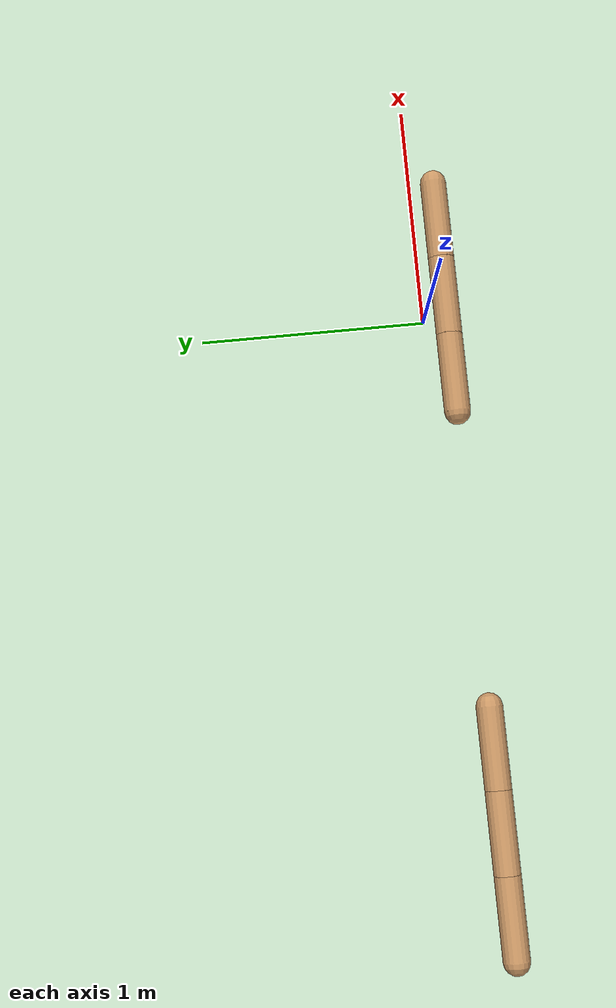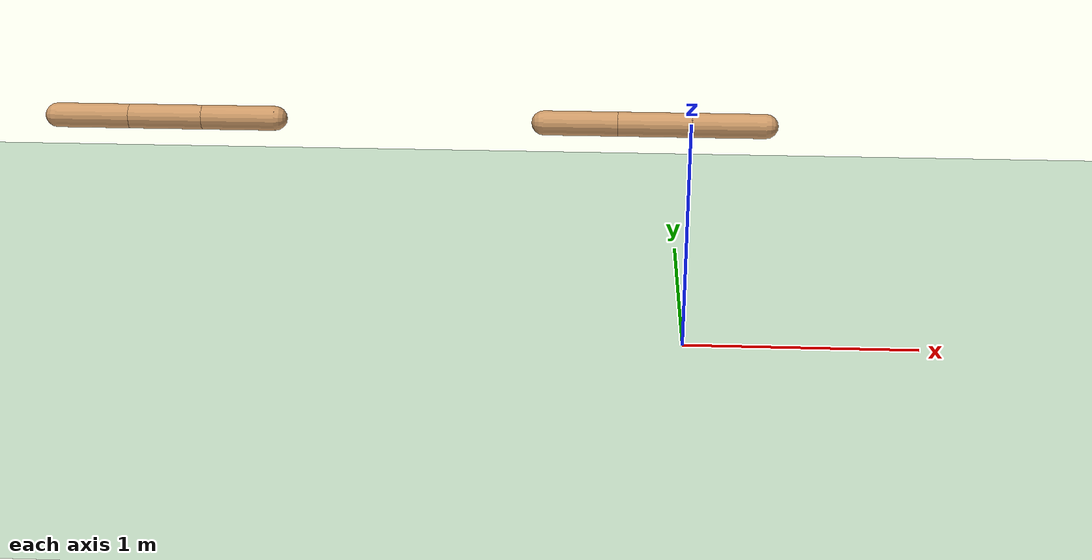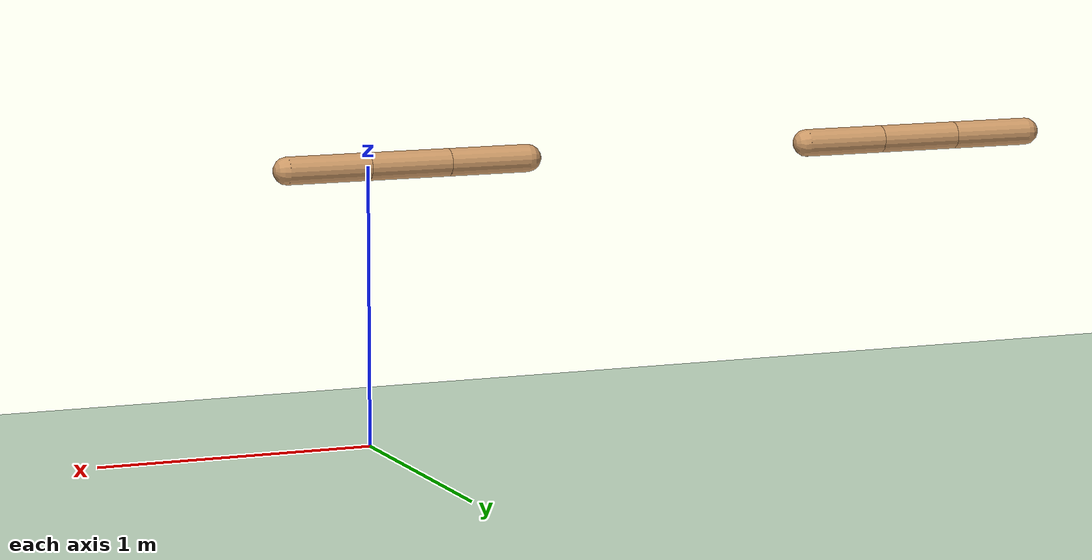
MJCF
<mujoco model="swimmer">
  <compiler angle="degree" coordinate="local" inertiafromgeom="true"/>
  <option density="4000" integrator="RK4" timestep="0.01" /> <!-- collision="predefined" viscosity="0.1"-->
  <default>
    <geom conaffinity="1" condim="3" contype="1" material="geom" density="5.0" friction="1 0.5 0.5" rgba="0.8 0.6 .4 1"/>
    <joint armature='1' damping="1"  />
  </default>
  <asset>
    <texture builtin="gradient" height="100" rgb1="1 1 1" rgb2="0 0 0" type="skybox" width="100"/>
    <texture builtin="flat" height="1278" mark="cross" markrgb="1 1 1" name="texgeom" random="0" rgb1="0.8 0.6 0.4" rgb2="0.8 0.6 0.4" type="cube" width="127"/>
    <texture builtin="checker" height="100" name="texplane" rgb1="0 0 0" rgb2="0.8 0.8 0.8" type="2d" width="100"/>
    <material name="MatPlane" reflectance="0.5" shininess="1" specular="1" texrepeat="30 30" texture="texplane"/>
    <material name="geom" texture="texgeom" texuniform="true"/>
  </asset>
  <worldbody>
    <light cutoff="100" diffuse="1 1 1" dir="-0 0 -1.3" directional="true" exponent="1" pos="0 0 1.3" specular=".1 .1 .1"/>
    <geom conaffinity="1" condim="3" material="MatPlane" name="floor" pos="0 0 -0.1" rgba="0.8 0.9 0.8 1" size="40 40 0.1" type="plane"/>

    <!--  ================= SWIMMER ================= /-->
    <body name="torso" pos="0 0 1">
      <geom density="1000" fromto="0 0 0 0.3 0 0" size="0.05" type="capsule"/>
      <joint armature="1" damping="0" limited="false" margin="0.01" name="root-handicap__11" pos="0 0 0" type="free"/>
      <body name="mid" pos="0 0 0">
        <geom density="1000" fromto="0 0 0 -0.3 0 0" size="0.05" type="capsule"/>
        <joint axis="0 0 1" limited="true" name="rot2" pos="0 0 0" range="-100 100" type="hinge"/>
        <body name="back" pos="-0.3 0 0">
          <geom density="1000" fromto="0 0 0 -0.3 0 0" size="0.05" type="capsule"/>
          <joint axis="0 0 1" limited="true" name="rot3" pos="0 0 0" range="-100 100" type="hinge"/>
        </body>
      </body>
    </body>

    <!--  ================= SWIMMER ================= /-->
    <body name="torso_sw2" pos="-2 0 1">
      <geom density="1000" fromto="0 0 0 0.3 0 0" size="0.05" type="capsule"/>
      <joint armature="1" damping="0" limited="false" margin="0.01" name="root-handicap__11_sw2" pos="0 0 0" type="free"/>
      <body name="mid_sw2" pos="0 0 0">
        <geom density="1000" fromto="0 0 0 -0.3 0 0" size="0.05" type="capsule"/>
        <joint axis="0 0 1" limited="true" name="rot2_sw2" pos="0 0 0" range="-100 100" type="hinge"/>
        <body name="back_sw2" pos="-0.3 0 0">
          <geom density="1000" fromto="0 0 0 -0.3 0 0" size="0.05" type="capsule"/>
          <joint axis="0 0 1" limited="true" name="rot3_sw2" pos="0 0 0" range="-100 100" type="hinge"/>
        </body>
      </body>
    </body>

  </worldbody>
  <actuator>
    <motor ctrllimited="true" ctrlrange="-1 1" gear="150.0" joint="rot2"/>
    <motor ctrllimited="true" ctrlrange="-1 1" gear="150.0" joint="rot3"/>
    <motor ctrllimited="true" ctrlrange="-1 1" gear="150.0" joint="rot2_sw2"/>
    <motor ctrllimited="true" ctrlrange="-1 1" gear="150.0" joint="rot3_sw2"/>
  </actuator>
</mujoco>
